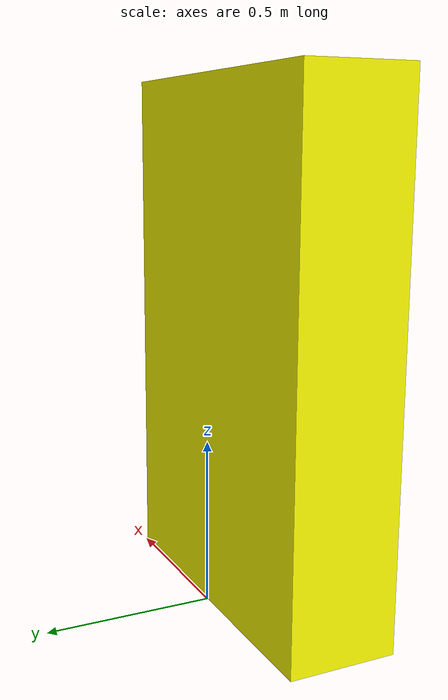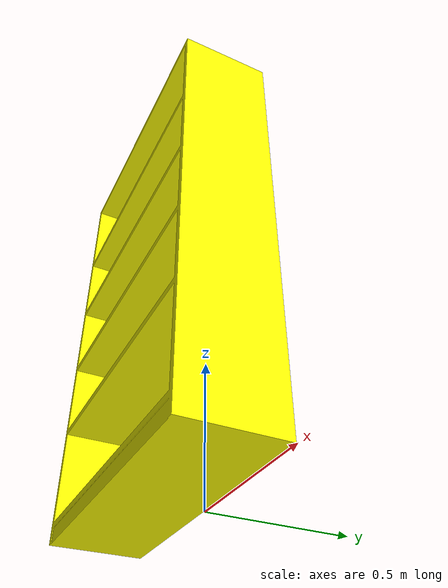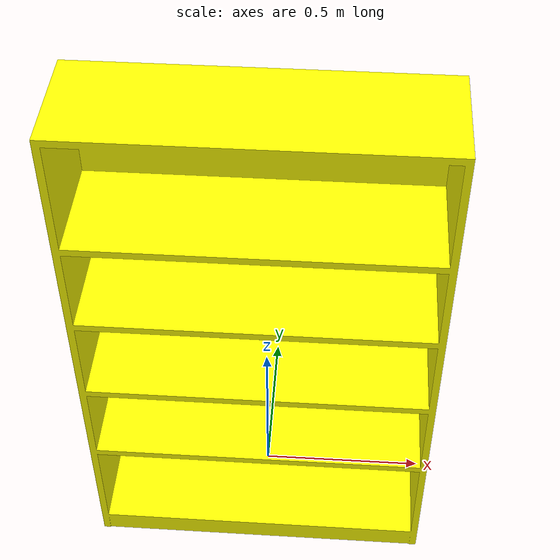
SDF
<?xml version='1.0'?>
<sdf version='1.6'>
  <model name='library_1'>
    <link name='link_1'>
      <pose frame=''>0 0 0 0 -0 0</pose>
      <visual name='visual'>
        <pose frame=''>0 0 1.235 1.57 -0 0</pose>
        <geometry>
          <mesh>
            <uri>model://rai_self_book/meshes/rai_self_book.STL</uri>
            <scale>1 1 1</scale>
          </mesh>
        </geometry>
        <material>
          <lighting>1</lighting>
          <script>
            <uri>file://media/materials/scripts/gazebo.material</uri>
            <name>Gazebo/Grey</name>
          </script>
          <ambient>1 1 0 1</ambient>
          <diffuse>1 1 0 1</diffuse>
          <specular>0.01 0.01 0.01 1</specular>
          <emissive>0 0 0 1</emissive>
          <shader type='vertex'>
            <normal_map>__default__</normal_map>
          </shader>
        </material>
        <cast_shadows>1</cast_shadows>
        <transparency>0</transparency>
      </visual>
      <collision name='collision'>
        <laser_retro>0</laser_retro>
        <max_contacts>10</max_contacts>
        <pose frame=''>-0.01 -0.16 0.78 0 -0 0</pose>
        <geometry>
          <box>
            <size>1.02 0.32 1.56</size>
          </box>
        </geometry>

      </collision>
    </link>
    <static>1</static>
    <allow_auto_disable>1</allow_auto_disable>
  </model>
</sdf>
